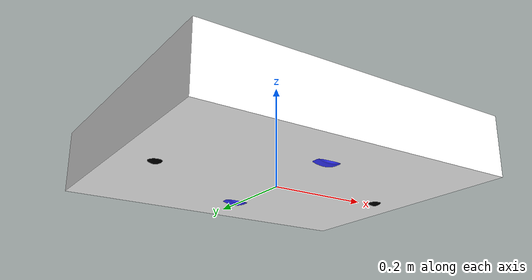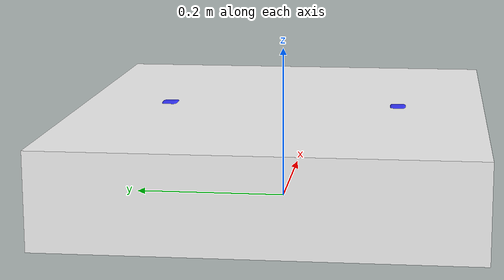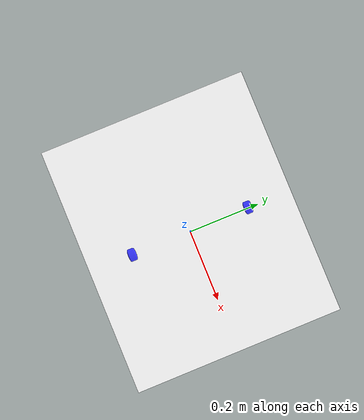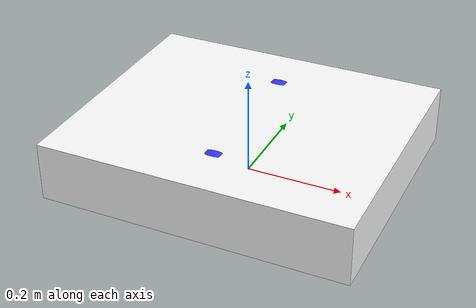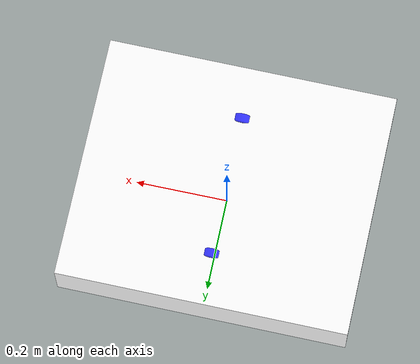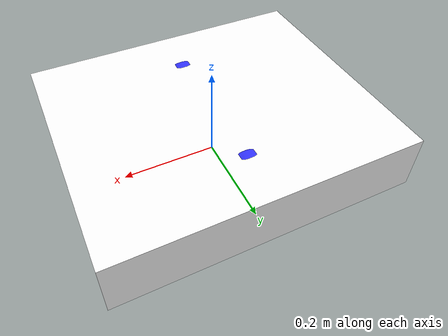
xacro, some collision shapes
<?xml version="1.0"?>
<robot xmlns:xacro="http://www.ros.org/wiki/xacro" >

    <xacro:include filename="inertial_macros.xacro"/>

    <xacro:property name="mesh_scale" value="0.001 0.001 0.001"/>

    <material name="white">
        <color rgba="1 1 1 1"/>
    </material>
    <material name="orange">
        <color rgba="1 0.3 0.1 1"/>
    </material>
    <material name="blue">
        <color rgba="0.2 0.2 1 1"/>
    </material>
    <material name="black">
        <color rgba="0 0 0 1"/>
    </material>
    <material name="red">
        <color rgba="1 0 0 1"/>
    </material>

    <link name="base_link">
    </link>

    <joint name="base_footprint_joint" type="fixed">
        <parent link="base_link"/>
        <child link="base_footprint"/>
        <origin xyz="0 0 0" rpy="0 0 0"/>
    </joint>

    <link name="base_footprint">
    </link>

    <joint name="chassis_joint" type="fixed">
        <parent link="base_link"/>
        <child link="chassis"/>
        <origin xyz="-0.315 0.0 0.0"/>
    </joint>

    <link name="chassis">
        <visual>
            <origin xyz="0.315 0.0 0.065" rpy="0.0 0.0 1.57"/>
            <geometry>
                <mesh filename="file://$(find nevo_bot)/meshes/body_urdf.stl" scale="${mesh_scale}"/>
            </geometry>
            <material name="white"/>
        </visual>
        <collision>
            <origin xyz="0.315 0.0 0.065" rpy="0.0 0.0 0.0"/>
            <geometry>
                <box size="0.63 0.53 0.12"/>
            </geometry>
        </collision>
        <xacro:inertial_box mass="5.0" x="0.63" y="0.53" z="0.12">
            <origin xyz="0.315 0.0 0.065" rpy="0.0 0.0 0.0"/>
        </xacro:inertial_box>
    </link>
    <gazebo reference="chassis">
        <visual>
            <material>
                <ambient>1 1 1 1</ambient>
                <diffuse>1 1 1 1</diffuse>
                <specular>0.5 0.5 0.5 1</specular>
            </material>
        </visual>
    </gazebo>

    <joint name="left_wheel_joint" type="continuous">
        <parent link="base_link"/>
        <child link="left_wheel"/>
        <origin xyz="0.0 0.2125 0.0635" rpy="-${pi/2} 0 0"/>  <!-- wheel_separation 0.425 m (measured 42 cm), same as diff_cont -->
        <axis xyz="0.0 0.0 1.0"/>
    </joint>

    <link name="left_wheel">
        <visual>
            <origin xyz="0 0 0.14" rpy="0 1.57 0"/>
            <geometry>
                <mesh filename="file://$(find nevo_bot)/meshes/left_wheel_urdf.stl" scale="${mesh_scale}"/>
            </geometry>
            <material name="blue"/>
        </visual>
        <collision>
            <origin xyz="0 0 0" rpy="0 0 0"/>
            <geometry>
                <cylinder radius="0.0635" length="0.024"/>
            </geometry>
        </collision>
        <xacro:inertial_cylinder mass="0.5" length="0.024" radius="0.0635">
            <origin xyz="0 0 0" rpy="0 0 0"/>
        </xacro:inertial_cylinder>
    </link>
    <gazebo reference="left_wheel">
        <visual>
            <material>
                <ambient>0.2 0.2 1 1</ambient>
                <diffuse>0.2 0.2 1 1</diffuse>
                <specular>0.5 0.5 0.5 1</specular>
            </material>
        </visual>
        <mu1>200.0</mu1>
        <mu2>200.0</mu2>
        <kp>10000000.0</kp>
        <kd>1.0</kd>
        <minDepth>0.001</minDepth>
        <maxVel>1.0</maxVel>
        <fdir1>1 0 0</fdir1>
    </gazebo>

    <joint name="right_wheel_joint" type="continuous">
        <parent link="base_link"/>
        <child link="right_wheel"/>
        <origin xyz="0.0 -0.2125 0.0635" rpy="${pi/2} 0 0"/>
        <axis xyz="0.0 0.0 -1.0"/>
    </joint>

    <link name="right_wheel">
        <visual>
            <origin xyz="0 0 -0.26" rpy="0 1.57 0"/>
            <geometry>
                <mesh filename="file://$(find nevo_bot)/meshes/right_wheel_urdf.stl" scale="${mesh_scale}"/>
            </geometry>
            <material name="blue"/>
        </visual>
        <collision>
            <origin xyz="0 0 0" rpy="0 0 0"/>
            <geometry>
                <cylinder radius="0.0635" length="0.024"/>
            </geometry>
        </collision>
        <xacro:inertial_cylinder mass="0.5" length="0.024" radius="0.0635">
            <origin xyz="0 0 0" rpy="0 0 0"/>
        </xacro:inertial_cylinder>
    </link>
    <gazebo reference="right_wheel">
        <visual>
            <material>
                <ambient>0.2 0.2 1 1</ambient>
                <diffuse>0.2 0.2 1 1</diffuse>
                <specular>0.5 0.5 0.5 1</specular>
            </material>
        </visual>
        <mu1>200.0</mu1>
        <mu2>200.0</mu2>
        <kp>10000000.0</kp>
        <kd>1.0</kd>
        <minDepth>0.001</minDepth>
        <maxVel>1.0</maxVel>
        <fdir1>1 0 0</fdir1>
    </gazebo>

    <joint name="rear_caster_wheel_joint" type="fixed">
        <parent link="chassis"/>
        <child link="rear_caster_wheel"/>
        <origin xyz="0.56 0.0 0.05"/>
    </joint>

    <link name="rear_caster_wheel">
        <visual>
            <origin xyz="0 0 -0.03" rpy="0 0 0"/>
            <geometry>
                <sphere radius="0.02"/>
            </geometry>
            <material name="black"/>
        </visual>
        <collision>
            <origin xyz="0 0 -0.03" rpy="0 0 0"/>
            <geometry>
                <sphere radius="0.02"/>
            </geometry>
        </collision>
        <xacro:inertial_sphere mass="0.1" radius="0.02">
            <origin xyz="0.0 0.0 -0.03" rpy="0.0 0.0 0.0"/>
        </xacro:inertial_sphere>
    </link>
    <gazebo reference="rear_caster_wheel">
        <visual>
            <material>
                <ambient>0.1 0.1 0.1 1</ambient>
                <diffuse>0.1 0.1 0.1 1</diffuse>
                <specular>0.2 0.2 0.2 1</specular>
            </material>
        </visual>
        <mu1>0.0</mu1>
        <mu2>0.0</mu2>
        <kp>1000000.0</kp>
        <kd>100.0</kd>
        <minDepth>0.001</minDepth>
        <maxVel>0.1</maxVel>
    </gazebo>

    <joint name="back_caster_wheel_joint" type="fixed">
        <parent link="chassis"/>
        <child link="back_caster_wheel"/>
        <origin xyz="0.07 0.0 0.05"/>
    </joint>

    <link name="back_caster_wheel">
        <visual>
            <origin xyz="0 0 -0.03" rpy="0 0 0"/>
            <geometry>
                <sphere radius="0.02"/>
            </geometry>
            <material name="black"/>
        </visual>
        <collision>
            <origin xyz="0 0 -0.03" rpy="0 0 0"/>
            <geometry>
                <sphere radius="0.02"/>
            </geometry>
        </collision>
        <xacro:inertial_sphere mass="0.1" radius="0.02">
            <origin xyz="0.0 0.0 -0.03" rpy="0.0 0.0 0.0"/>
        </xacro:inertial_sphere>
    </link>
    <gazebo reference="back_caster_wheel">
        <visual>
            <material>
                <ambient>0.1 0.1 0.1 1</ambient>
                <diffuse>0.1 0.1 0.1 1</diffuse>
                <specular>0.2 0.2 0.2 1</specular>
            </material>
        </visual>
        <mu1>0.0</mu1>
        <mu2>0.0</mu2>
        <kp>1000000.0</kp>
        <kd>100.0</kd>
        <minDepth>0.001</minDepth>
        <maxVel>0.1</maxVel>
    </gazebo>

</robot>
